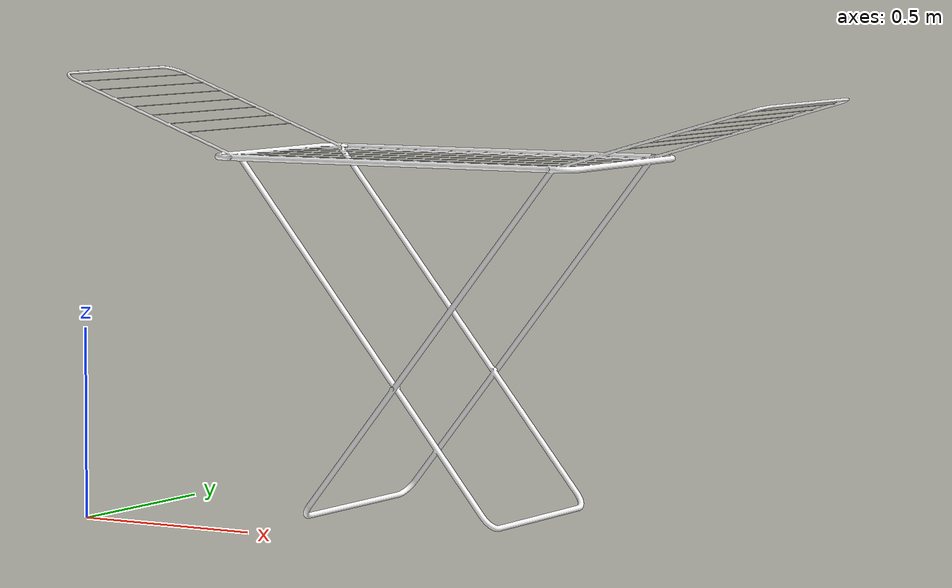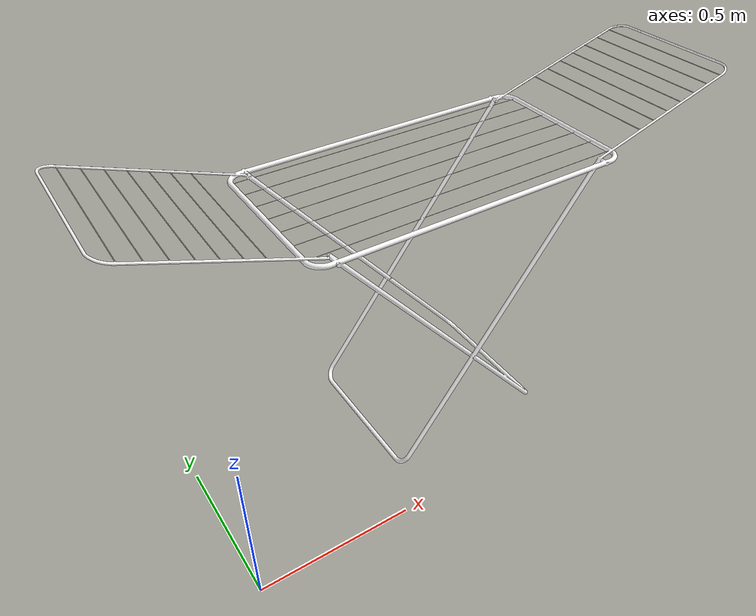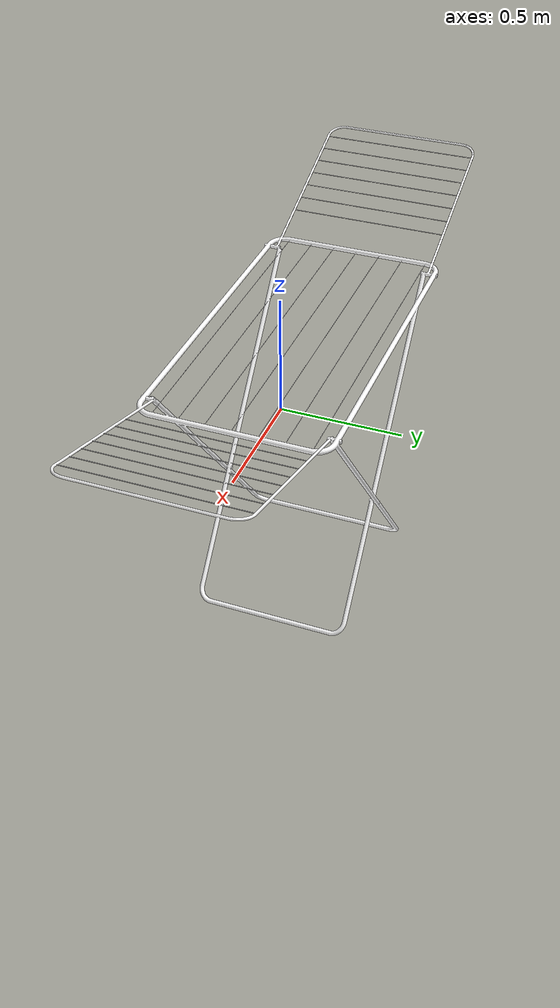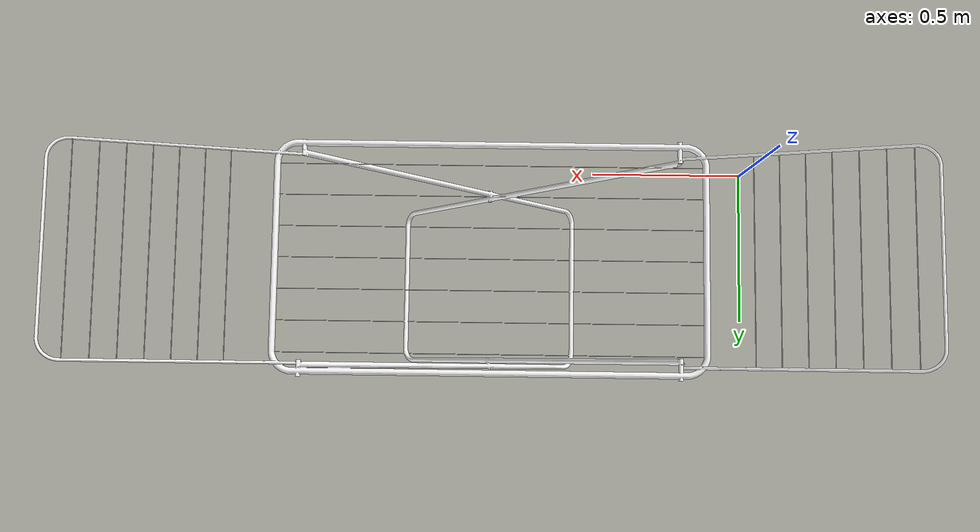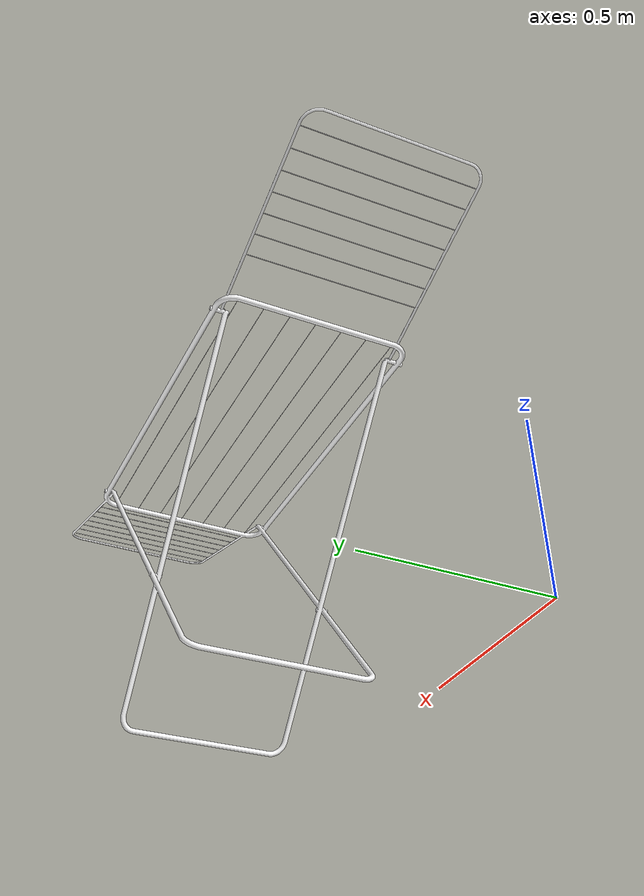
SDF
<?xml version='1.0'?>
<sdf version='1.7'>
  <model name='clothrack'>
    <link name='link'>
      <pose>0 0 0 0 0 0</pose>
      <visual name='visual'>
        <geometry>
          <mesh>
            <uri>/root/workspace/self_gazebo_models/clothrack/meshes/model.dae</uri>
          </mesh>
        </geometry>
        <material>
          <script>
	          <uri>/root/workspace/self_gazebo_models/clothrack/materials/scripts</uri>
            <uri>/root/workspace/self_gazebo_models/clothrack/materials/textures</uri>
            <name>Balcony/clothrack</name>
          </script>
          <ambient>1 1 1 1</ambient>
        </material>
      </visual>
      <collision name='collision'>
        <geometry>
          <mesh>
            <uri>/root/workspace/self_gazebo_models/clothrack/meshes/model.dae</uri>
            <scale>1 1 1</scale>
          </mesh>
        </geometry>
      </collision>
    </link>
    <static>1</static>
    <allow_auto_disable>1</allow_auto_disable>
  </model>
</sdf>
